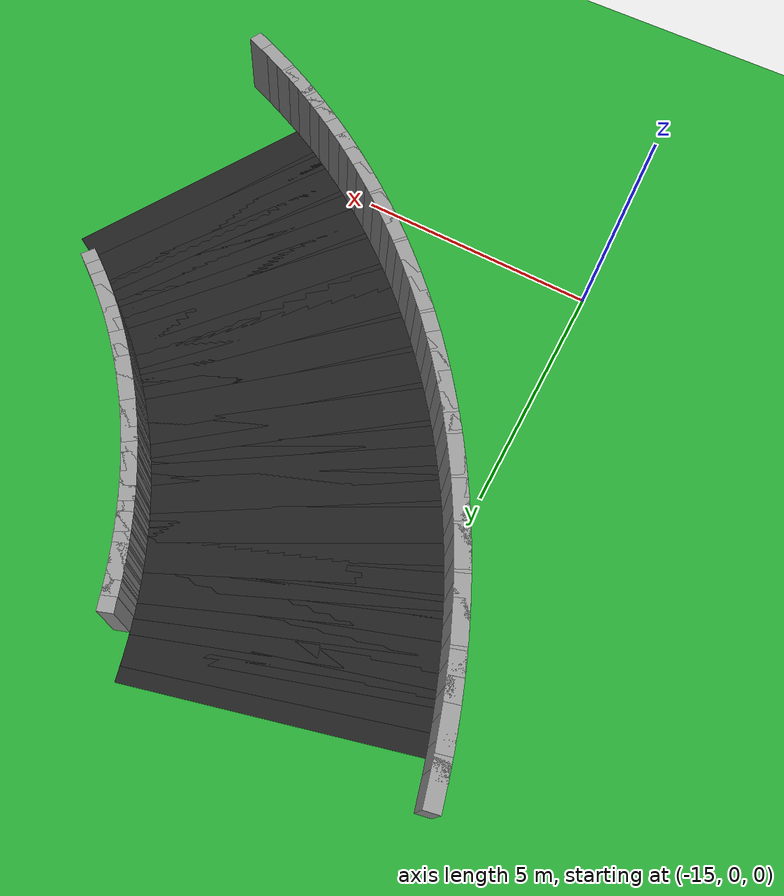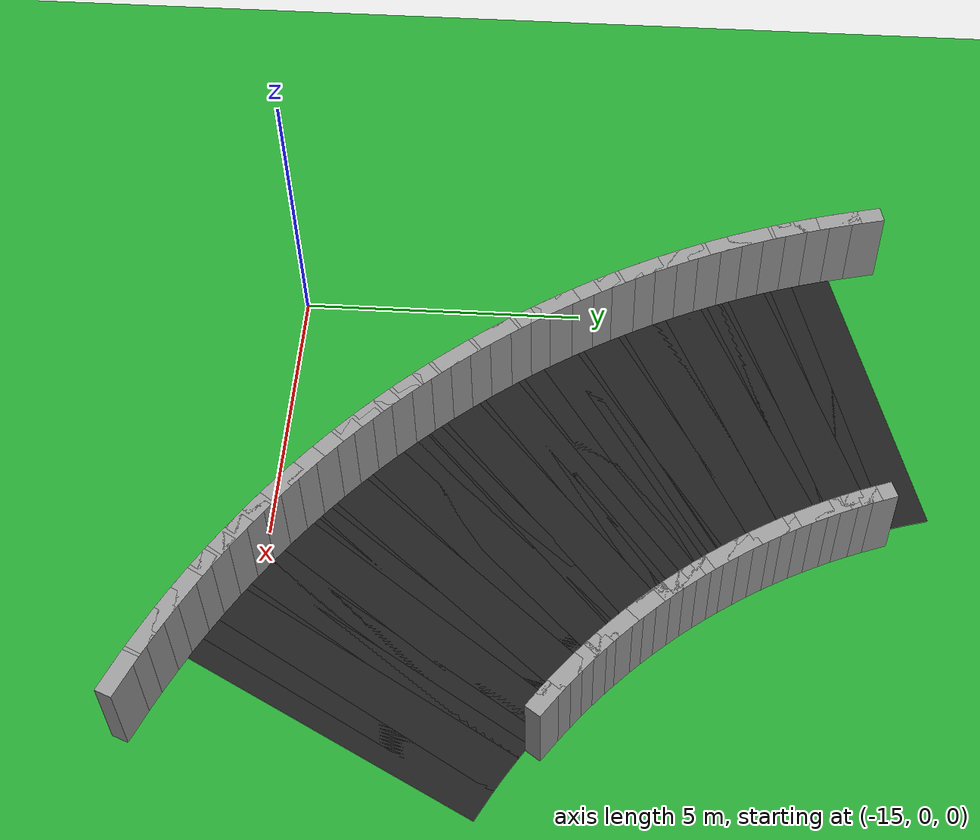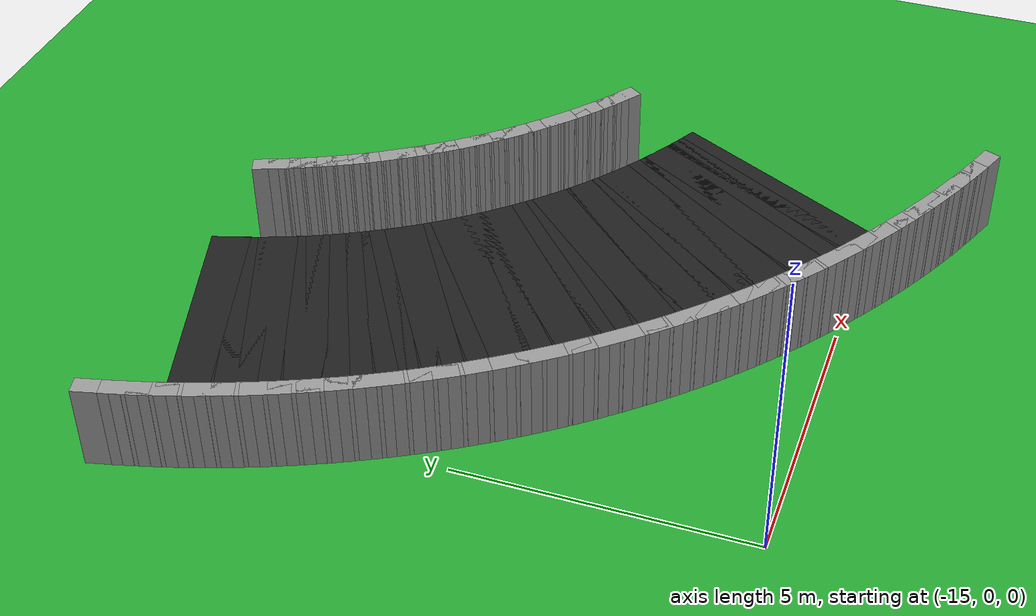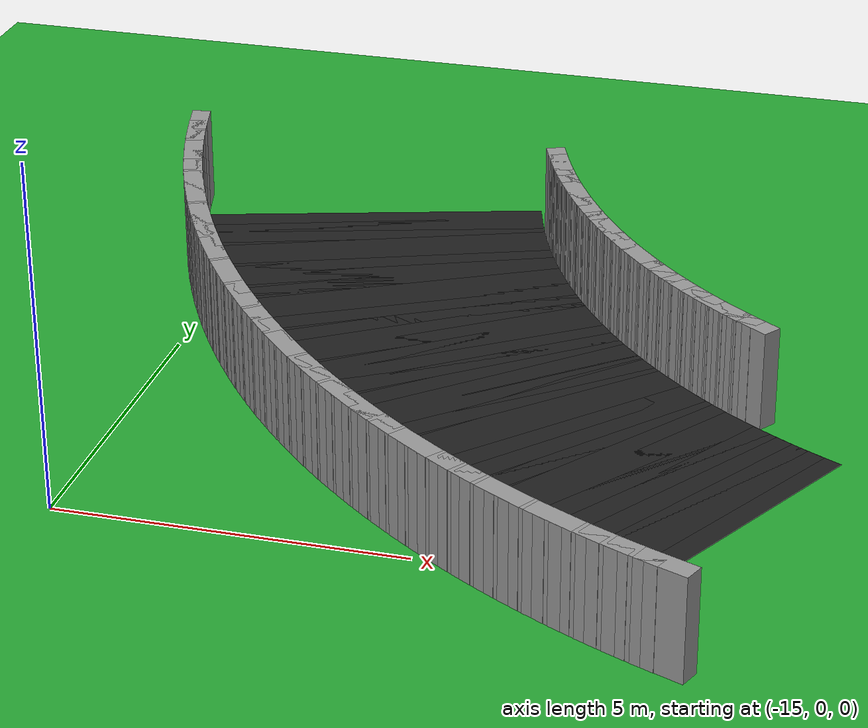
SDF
<sdf version="1.6">
 <world name="loop_speedloop">
  <include><uri>model://sun</uri></include>
  <model name="ground_plane">
   <static>true</static>
   <link name="link">
    <collision name="collision">
     <surface><friction><ode><mu>100</mu><mu2>50</mu2></ode></friction></surface>
     <geometry><plane><normal>0 0 1</normal><size>120 120</size></plane></geometry>
    </collision>
    <visual name="visual">
     <geometry><plane><normal>0 0 1</normal><size>120 120</size></plane></geometry>
     <material>
      <script><uri>file://media/materials/scripts/gazebo.material</uri><name>Gazebo/Green</name></script>
     </material>
    </visual>
   </link>
  </model>
  <model name="curbR_466">
   <static>true</static>
   <pose>-16.427 10.035 0.750 0 0 -1.33393</pose>
   <link name="link">
    <collision name="collision"><geometry><box><size>0.781 0.300 1.500</size></box></geometry></collision>
    <visual name="visual">
     <geometry><box><size>0.781 0.300 1.500</size></box></geometry>
     <material>
      <script><uri>file://media/materials/scripts/gazebo.material</uri><name>Gazebo/Grey</name></script>
     </material>
    </visual>
   </link>
  </model>
  <model name="curbR_467">
   <static>true</static>
   <pose>-16.323 9.627 0.750 0 0 -1.30900</pose>
   <link name="link">
    <collision name="collision"><geometry><box><size>0.781 0.300 1.500</size></box></geometry></collision>
    <visual name="visual">
     <geometry><box><size>0.781 0.300 1.500</size></box></geometry>
     <material>
      <script><uri>file://media/materials/scripts/gazebo.material</uri><name>Gazebo/Grey</name></script>
     </material>
    </visual>
   </link>
  </model>
  <model name="asphalt_468">
   <static>true</static>
   <pose>-13.428 10.041 0.005 0 0 -1.28406</pose>
   <link name="link">
    <visual name="visual">
     <geometry><box><size>0.709 5.500 0.010</size></box></geometry>
     <material>
      <script><uri>file://media/materials/scripts/gazebo.material</uri><name>Gazebo/Black</name></script>
     </material>
    </visual>
   </link>
  </model>
  <model name="curbR_468">
   <static>true</static>
   <pose>-16.209 9.221 0.750 0 0 -1.28406</pose>
   <link name="link">
    <collision name="collision"><geometry><box><size>0.781 0.300 1.500</size></box></geometry></collision>
    <visual name="visual">
     <geometry><box><size>0.781 0.300 1.500</size></box></geometry>
     <material>
      <script><uri>file://media/materials/scripts/gazebo.material</uri><name>Gazebo/Grey</name></script>
     </material>
    </visual>
   </link>
  </model>
  <model name="asphalt_469">
   <static>true</static>
   <pose>-13.325 9.708 0.005 0 0 -1.25913</pose>
   <link name="link">
    <visual name="visual">
     <geometry><box><size>0.709 5.500 0.010</size></box></geometry>
     <material>
      <script><uri>file://media/materials/scripts/gazebo.material</uri><name>Gazebo/Black</name></script>
     </material>
    </visual>
   </link>
  </model>
  <model name="curbR_469">
   <static>true</static>
   <pose>-16.085 8.818 0.750 0 0 -1.25913</pose>
   <link name="link">
    <collision name="collision"><geometry><box><size>0.781 0.300 1.500</size></box></geometry></collision>
    <visual name="visual">
     <geometry><box><size>0.781 0.300 1.500</size></box></geometry>
     <material>
      <script><uri>file://media/materials/scripts/gazebo.material</uri><name>Gazebo/Grey</name></script>
     </material>
    </visual>
   </link>
  </model>
  <model name="asphalt_470">
   <static>true</static>
   <pose>-13.214 9.377 0.005 0 0 -1.23420</pose>
   <link name="link">
    <visual name="visual">
     <geometry><box><size>0.709 5.500 0.010</size></box></geometry>
     <material>
      <script><uri>file://media/materials/scripts/gazebo.material</uri><name>Gazebo/Black</name></script>
     </material>
    </visual>
   </link>
  </model>
  <model name="curbR_470">
   <static>true</static>
   <pose>-15.951 8.419 0.750 0 0 -1.23420</pose>
   <link name="link">
    <collision name="collision"><geometry><box><size>0.781 0.300 1.500</size></box></geometry></collision>
    <visual name="visual">
     <geometry><box><size>0.781 0.300 1.500</size></box></geometry>
     <material>
      <script><uri>file://media/materials/scripts/gazebo.material</uri><name>Gazebo/Grey</name></script>
     </material>
    </visual>
   </link>
  </model>
  <model name="asphalt_471">
   <static>true</static>
   <pose>-13.094 9.049 0.005 0 0 -1.20926</pose>
   <link name="link">
    <visual name="visual">
     <geometry><box><size>0.709 5.500 0.010</size></box></geometry>
     <material>
      <script><uri>file://media/materials/scripts/gazebo.material</uri><name>Gazebo/Black</name></script>
     </material>
    </visual>
   </link>
  </model>
  <model name="curbL_471">
   <static>true</static>
   <pose>-10.382 10.074 0.750 0 0 -1.20926</pose>
   <link name="link">
    <collision name="collision"><geometry><box><size>0.637 0.300 1.500</size></box></geometry></collision>
    <visual name="visual">
     <geometry><box><size>0.637 0.300 1.500</size></box></geometry>
     <material>
      <script><uri>file://media/materials/scripts/gazebo.material</uri><name>Gazebo/Grey</name></script>
     </material>
    </visual>
   </link>
  </model>
  <model name="curbR_471">
   <static>true</static>
   <pose>-15.807 8.023 0.750 0 0 -1.20926</pose>
   <link name="link">
    <collision name="collision"><geometry><box><size>0.781 0.300 1.500</size></box></geometry></collision>
    <visual name="visual">
     <geometry><box><size>0.781 0.300 1.500</size></box></geometry>
     <material>
      <script><uri>file://media/materials/scripts/gazebo.material</uri><name>Gazebo/Grey</name></script>
     </material>
    </visual>
   </link>
  </model>
  <model name="asphalt_472">
   <static>true</static>
   <pose>-12.967 8.724 0.005 0 0 -1.18433</pose>
   <link name="link">
    <visual name="visual">
     <geometry><box><size>0.709 5.500 0.010</size></box></geometry>
     <material>
      <script><uri>file://media/materials/scripts/gazebo.material</uri><name>Gazebo/Black</name></script>
     </material>
    </visual>
   </link>
  </model>
  <model name="curbL_472">
   <static>true</static>
   <pose>-10.281 9.817 0.750 0 0 -1.18433</pose>
   <link name="link">
    <collision name="collision"><geometry><box><size>0.637 0.300 1.500</size></box></geometry></collision>
    <visual name="visual">
     <geometry><box><size>0.637 0.300 1.500</size></box></geometry>
     <material>
      <script><uri>file://media/materials/scripts/gazebo.material</uri><name>Gazebo/Grey</name></script>
     </material>
    </visual>
   </link>
  </model>
  <model name="curbR_472">
   <static>true</static>
   <pose>-15.653 7.631 0.750 0 0 -1.18433</pose>
   <link name="link">
    <collision name="collision"><geometry><box><size>0.781 0.300 1.500</size></box></geometry></collision>
    <visual name="visual">
     <geometry><box><size>0.781 0.300 1.500</size></box></geometry>
     <material>
      <script><uri>file://media/materials/scripts/gazebo.material</uri><name>Gazebo/Grey</name></script>
     </material>
    </visual>
   </link>
  </model>
  <model name="asphalt_473">
   <static>true</static>
   <pose>-12.831 8.402 0.005 0 0 -1.15940</pose>
   <link name="link">
    <visual name="visual">
     <geometry><box><size>0.709 5.500 0.010</size></box></geometry>
     <material>
      <script><uri>file://media/materials/scripts/gazebo.material</uri><name>Gazebo/Black</name></script>
     </material>
    </visual>
   </link>
  </model>
  <model name="curbL_473">
   <static>true</static>
   <pose>-10.173 9.562 0.750 0 0 -1.15940</pose>
   <link name="link">
    <collision name="collision"><geometry><box><size>0.637 0.300 1.500</size></box></geometry></collision>
    <visual name="visual">
     <geometry><box><size>0.637 0.300 1.500</size></box></geometry>
     <material>
      <script><uri>file://media/materials/scripts/gazebo.material</uri><name>Gazebo/Grey</name></script>
     </material>
    </visual>
   </link>
  </model>
  <model name="curbR_473">
   <static>true</static>
   <pose>-15.489 7.243 0.750 0 0 -1.15940</pose>
   <link name="link">
    <collision name="collision"><geometry><box><size>0.781 0.300 1.500</size></box></geometry></collision>
    <visual name="visual">
     <geometry><box><size>0.781 0.300 1.500</size></box></geometry>
     <material>
      <script><uri>file://media/materials/scripts/gazebo.material</uri><name>Gazebo/Grey</name></script>
     </material>
    </visual>
   </link>
  </model>
  <model name="asphalt_474">
   <static>true</static>
   <pose>-12.688 8.084 0.005 0 0 -1.13446</pose>
   <link name="link">
    <visual name="visual">
     <geometry><box><size>0.709 5.500 0.010</size></box></geometry>
     <material>
      <script><uri>file://media/materials/scripts/gazebo.material</uri><name>Gazebo/Black</name></script>
     </material>
    </visual>
   </link>
  </model>
  <model name="curbL_474">
   <static>true</static>
   <pose>-10.060 9.310 0.750 0 0 -1.13446</pose>
   <link name="link">
    <collision name="collision"><geometry><box><size>0.637 0.300 1.500</size></box></geometry></collision>
    <visual name="visual">
     <geometry><box><size>0.637 0.300 1.500</size></box></geometry>
     <material>
      <script><uri>file://media/materials/scripts/gazebo.material</uri><name>Gazebo/Grey</name></script>
     </material>
    </visual>
   </link>
  </model>
  <model name="curbR_474">
   <static>true</static>
   <pose>-15.316 6.859 0.750 0 0 -1.13446</pose>
   <link name="link">
    <collision name="collision"><geometry><box><size>0.781 0.300 1.500</size></box></geometry></collision>
    <visual name="visual">
     <geometry><box><size>0.781 0.300 1.500</size></box></geometry>
     <material>
      <script><uri>file://media/materials/scripts/gazebo.material</uri><name>Gazebo/Grey</name></script>
     </material>
    </visual>
   </link>
  </model>
  <model name="asphalt_475">
   <static>true</static>
   <pose>-12.536 7.770 0.005 0 0 -1.10953</pose>
   <link name="link">
    <visual name="visual">
     <geometry><box><size>0.709 5.500 0.010</size></box></geometry>
     <material>
      <script><uri>file://media/materials/scripts/gazebo.material</uri><name>Gazebo/Black</name></script>
     </material>
    </visual>
   </link>
  </model>
  <model name="curbL_475">
   <static>true</static>
   <pose>-9.939 9.060 0.750 0 0 -1.10953</pose>
   <link name="link">
    <collision name="collision"><geometry><box><size>0.637 0.300 1.500</size></box></geometry></collision>
    <visual name="visual">
     <geometry><box><size>0.637 0.300 1.500</size></box></geometry>
     <material>
      <script><uri>file://media/materials/scripts/gazebo.material</uri><name>Gazebo/Grey</name></script>
     </material>
    </visual>
   </link>
  </model>
  <model name="curbR_475">
   <static>true</static>
   <pose>-15.133 6.479 0.750 0 0 -1.10953</pose>
   <link name="link">
    <collision name="collision"><geometry><box><size>0.781 0.300 1.500</size></box></geometry></collision>
    <visual name="visual">
     <geometry><box><size>0.781 0.300 1.500</size></box></geometry>
     <material>
      <script><uri>file://media/materials/scripts/gazebo.material</uri><name>Gazebo/Grey</name></script>
     </material>
    </visual>
   </link>
  </model>
  <model name="asphalt_476">
   <static>true</static>
   <pose>-12.377 7.459 0.005 0 0 -1.08460</pose>
   <link name="link">
    <visual name="visual">
     <geometry><box><size>0.709 5.500 0.010</size></box></geometry>
     <material>
      <script><uri>file://media/materials/scripts/gazebo.material</uri><name>Gazebo/Black</name></script>
     </material>
    </visual>
   </link>
  </model>
  <model name="curbL_476">
   <static>true</static>
   <pose>-9.813 8.814 0.750 0 0 -1.08460</pose>
   <link name="link">
    <collision name="collision"><geometry><box><size>0.637 0.300 1.500</size></box></geometry></collision>
    <visual name="visual">
     <geometry><box><size>0.637 0.300 1.500</size></box></geometry>
     <material>
      <script><uri>file://media/materials/scripts/gazebo.material</uri><name>Gazebo/Grey</name></script>
     </material>
    </visual>
   </link>
  </model>
  <model name="curbR_476">
   <static>true</static>
   <pose>-14.941 6.104 0.750 0 0 -1.08460</pose>
   <link name="link">
    <collision name="collision"><geometry><box><size>0.781 0.300 1.500</size></box></geometry></collision>
    <visual name="visual">
     <geometry><box><size>0.781 0.300 1.500</size></box></geometry>
     <material>
      <script><uri>file://media/materials/scripts/gazebo.material</uri><name>Gazebo/Grey</name></script>
     </material>
    </visual>
   </link>
  </model>
  <model name="asphalt_477">
   <static>true</static>
   <pose>-12.210 7.152 0.005 0 0 -1.05966</pose>
   <link name="link">
    <visual name="visual">
     <geometry><box><size>0.709 5.500 0.010</size></box></geometry>
     <material>
      <script><uri>file://media/materials/scripts/gazebo.material</uri><name>Gazebo/Black</name></script>
     </material>
    </visual>
   </link>
  </model>
  <model name="curbL_477">
   <static>true</static>
   <pose>-9.681 8.571 0.750 0 0 -1.05966</pose>
   <link name="link">
    <collision name="collision"><geometry><box><size>0.637 0.300 1.500</size></box></geometry></collision>
    <visual name="visual">
     <geometry><box><size>0.637 0.300 1.500</size></box></geometry>
     <material>
      <script><uri>file://media/materials/scripts/gazebo.material</uri><name>Gazebo/Grey</name></script>
     </material>
    </visual>
   </link>
  </model>
  <model name="curbR_477">
   <static>true</static>
   <pose>-14.739 5.734 0.750 0 0 -1.05966</pose>
   <link name="link">
    <collision name="collision"><geometry><box><size>0.781 0.300 1.500</size></box></geometry></collision>
    <visual name="visual">
     <geometry><box><size>0.781 0.300 1.500</size></box></geometry>
     <material>
      <script><uri>file://media/materials/scripts/gazebo.material</uri><name>Gazebo/Grey</name></script>
     </material>
    </visual>
   </link>
  </model>
  <model name="asphalt_478">
   <static>true</static>
   <pose>-12.036 6.850 0.005 0 0 -1.03473</pose>
   <link name="link">
    <visual name="visual">
     <geometry><box><size>0.709 5.500 0.010</size></box></geometry>
     <material>
      <script><uri>file://media/materials/scripts/gazebo.material</uri><name>Gazebo/Black</name></script>
     </material>
    </visual>
   </link>
  </model>
  <model name="curbL_478">
   <static>true</static>
   <pose>-9.543 8.331 0.750 0 0 -1.03473</pose>
   <link name="link">
    <collision name="collision"><geometry><box><size>0.637 0.300 1.500</size></box></geometry></collision>
    <visual name="visual">
     <geometry><box><size>0.637 0.300 1.500</size></box></geometry>
     <material>
      <script><uri>file://media/materials/scripts/gazebo.material</uri><name>Gazebo/Grey</name></script>
     </material>
    </visual>
   </link>
  </model>
  <model name="curbR_478">
   <static>true</static>
   <pose>-14.529 5.369 0.750 0 0 -1.03473</pose>
   <link name="link">
    <collision name="collision"><geometry><box><size>0.781 0.300 1.500</size></box></geometry></collision>
    <visual name="visual">
     <geometry><box><size>0.781 0.300 1.500</size></box></geometry>
     <material>
      <script><uri>file://media/materials/scripts/gazebo.material</uri><name>Gazebo/Grey</name></script>
     </material>
    </visual>
   </link>
  </model>
  <model name="asphalt_479">
   <static>true</static>
   <pose>-11.854 6.552 0.005 0 0 -1.00980</pose>
   <link name="link">
    <visual name="visual">
     <geometry><box><size>0.709 5.500 0.010</size></box></geometry>
     <material>
      <script><uri>file://media/materials/scripts/gazebo.material</uri><name>Gazebo/Black</name></script>
     </material>
    </visual>
   </link>
  </model>
  <model name="curbL_479">
   <static>true</static>
   <pose>-9.398 8.095 0.750 0 0 -1.00980</pose>
   <link name="link">
    <collision name="collision"><geometry><box><size>0.637 0.300 1.500</size></box></geometry></collision>
    <visual name="visual">
     <geometry><box><size>0.637 0.300 1.500</size></box></geometry>
     <material>
      <script><uri>file://media/materials/scripts/gazebo.material</uri><name>Gazebo/Grey</name></script>
     </material>
    </visual>
   </link>
  </model>
  <model name="curbR_479">
   <static>true</static>
   <pose>-14.309 5.010 0.750 0 0 -1.00980</pose>
   <link name="link">
    <collision name="collision"><geometry><box><size>0.781 0.300 1.500</size></box></geometry></collision>
    <visual name="visual">
     <geometry><box><size>0.781 0.300 1.500</size></box></geometry>
     <material>
      <script><uri>file://media/materials/scripts/gazebo.material</uri><name>Gazebo/Grey</name></script>
     </material>
    </visual>
   </link>
  </model>
  <model name="asphalt_480">
   <static>true</static>
   <pose>-11.664 6.259 0.005 0 0 -0.98486</pose>
   <link name="link">
    <visual name="visual">
     <geometry><box><size>0.709 5.500 0.010</size></box></geometry>
     <material>
      <script><uri>file://media/materials/scripts/gazebo.material</uri><name>Gazebo/Black</name></script>
     </material>
    </visual>
   </link>
  </model>
  <model name="curbL_480">
   <static>true</static>
   <pose>-9.248 7.863 0.750 0 0 -0.98486</pose>
   <link name="link">
    <collision name="collision"><geometry><box><size>0.637 0.300 1.500</size></box></geometry></collision>
    <visual name="visual">
     <geometry><box><size>0.637 0.300 1.500</size></box></geometry>
     <material>
      <script><uri>file://media/materials/scripts/gazebo.material</uri><name>Gazebo/Grey</name></script>
     </material>
    </visual>
   </link>
  </model>
  <model name="curbR_480">
   <static>true</static>
   <pose>-14.080 4.656 0.750 0 0 -0.98486</pose>
   <link name="link">
    <collision name="collision"><geometry><box><size>0.781 0.300 1.500</size></box></geometry></collision>
    <visual name="visual">
     <geometry><box><size>0.781 0.300 1.500</size></box></geometry>
     <material>
      <script><uri>file://media/materials/scripts/gazebo.material</uri><name>Gazebo/Grey</name></script>
     </material>
    </visual>
   </link>
  </model>
  <model name="asphalt_481">
   <static>true</static>
   <pose>-11.468 5.971 0.005 0 0 -0.95993</pose>
   <link name="link">
    <visual name="visual">
     <geometry><box><size>0.709 5.500 0.010</size></box></geometry>
     <material>
      <script><uri>file://media/materials/scripts/gazebo.material</uri><name>Gazebo/Black</name></script>
     </material>
    </visual>
   </link>
  </model>
  <model name="curbL_481">
   <static>true</static>
   <pose>-9.092 7.634 0.750 0 0 -0.95993</pose>
   <link name="link">
    <collision name="collision"><geometry><box><size>0.637 0.300 1.500</size></box></geometry></collision>
    <visual name="visual">
     <geometry><box><size>0.637 0.300 1.500</size></box></geometry>
     <material>
      <script><uri>file://media/materials/scripts/gazebo.material</uri><name>Gazebo/Grey</name></script>
     </material>
    </visual>
   </link>
  </model>
  <model name="curbR_481">
   <static>true</static>
   <pose>-13.843 4.307 0.750 0 0 -0.95993</pose>
   <link name="link">
    <collision name="collision"><geometry><box><size>0.781 0.300 1.500</size></box></geometry></collision>
    <visual name="visual">
     <geometry><box><size>0.781 0.300 1.500</size></box></geometry>
     <material>
      <script><uri>file://media/materials/scripts/gazebo.material</uri><name>Gazebo/Grey</name></script>
     </material>
    </visual>
   </link>
  </model>
  <model name="asphalt_482">
   <static>true</static>
   <pose>-11.264 5.687 0.005 0 0 -0.93500</pose>
   <link name="link">
    <visual name="visual">
     <geometry><box><size>0.709 5.500 0.010</size></box></geometry>
     <material>
      <script><uri>file://media/materials/scripts/gazebo.material</uri><name>Gazebo/Black</name></script>
     </material>
    </visual>
   </link>
  </model>
  <model name="curbL_482">
   <static>true</static>
   <pose>-8.931 7.409 0.750 0 0 -0.93500</pose>
   <link name="link">
    <collision name="collision"><geometry><box><size>0.637 0.300 1.500</size></box></geometry></collision>
    <visual name="visual">
     <geometry><box><size>0.637 0.300 1.500</size></box></geometry>
     <material>
      <script><uri>file://media/materials/scripts/gazebo.material</uri><name>Gazebo/Grey</name></script>
     </material>
    </visual>
   </link>
  </model>
  <model name="curbR_482">
   <static>true</static>
   <pose>-13.597 3.965 0.750 0 0 -0.93500</pose>
   <link name="link">
    <collision name="collision"><geometry><box><size>0.781 0.300 1.500</size></box></geometry></collision>
    <visual name="visual">
     <geometry><box><size>0.781 0.300 1.500</size></box></geometry>
     <material>
      <script><uri>file://media/materials/scripts/gazebo.material</uri><name>Gazebo/Grey</name></script>
     </material>
    </visual>
   </link>
  </model>
  <model name="asphalt_483">
   <static>true</static>
   <pose>-11.053 5.409 0.005 0 0 -0.91006</pose>
   <link name="link">
    <visual name="visual">
     <geometry><box><size>0.709 5.500 0.010</size></box></geometry>
     <material>
      <script><uri>file://media/materials/scripts/gazebo.material</uri><name>Gazebo/Black</name></script>
     </material>
    </visual>
   </link>
  </model>
  <model name="curbL_483">
   <static>true</static>
   <pose>-8.764 7.189 0.750 0 0 -0.91006</pose>
   <link name="link">
    <collision name="collision"><geometry><box><size>0.637 0.300 1.500</size></box></geometry></collision>
    <visual name="visual">
     <geometry><box><size>0.637 0.300 1.500</size></box></geometry>
     <material>
      <script><uri>file://media/materials/scripts/gazebo.material</uri><name>Gazebo/Grey</name></script>
     </material>
    </visual>
   </link>
  </model>
  <model name="curbR_483">
   <static>true</static>
   <pose>-13.343 3.630 0.750 0 0 -0.91006</pose>
   <link name="link">
    <collision name="collision"><geometry><box><size>0.781 0.300 1.500</size></box></geometry></collision>
    <visual name="visual">
     <geometry><box><size>0.781 0.300 1.500</size></box></geometry>
     <material>
      <script><uri>file://media/materials/scripts/gazebo.material</uri><name>Gazebo/Grey</name></script>
     </material>
    </visual>
   </link>
  </model>
  <model name="asphalt_484">
   <static>true</static>
   <pose>-10.835 5.136 0.005 0 0 -0.88513</pose>
   <link name="link">
    <visual name="visual">
     <geometry><box><size>0.709 5.500 0.010</size></box></geometry>
     <material>
      <script><uri>file://media/materials/scripts/gazebo.material</uri><name>Gazebo/Black</name></script>
     </material>
    </visual>
   </link>
  </model>
  <model name="curbL_484">
   <static>true</static>
   <pose>-8.591 6.972 0.750 0 0 -0.88513</pose>
   <link name="link">
    <collision name="collision"><geometry><box><size>0.637 0.300 1.500</size></box></geometry></collision>
    <visual name="visual">
     <geometry><box><size>0.637 0.300 1.500</size></box></geometry>
     <material>
      <script><uri>file://media/materials/scripts/gazebo.material</uri><name>Gazebo/Grey</name></script>
     </material>
    </visual>
   </link>
  </model>
  <model name="curbR_484">
   <static>true</static>
   <pose>-13.080 3.300 0.750 0 0 -0.88513</pose>
   <link name="link">
    <collision name="collision"><geometry><box><size>0.781 0.300 1.500</size></box></geometry></collision>
    <visual name="visual">
     <geometry><box><size>0.781 0.300 1.500</size></box></geometry>
     <material>
      <script><uri>file://media/materials/scripts/gazebo.material</uri><name>Gazebo/Grey</name></script>
     </material>
    </visual>
   </link>
  </model>
  <model name="asphalt_485">
   <static>true</static>
   <pose>-10.611 4.869 0.005 0 0 -0.86020</pose>
   <link name="link">
    <visual name="visual">
     <geometry><box><size>0.709 5.500 0.010</size></box></geometry>
     <material>
      <script><uri>file://media/materials/scripts/gazebo.material</uri><name>Gazebo/Black</name></script>
     </material>
    </visual>
   </link>
  </model>
  <model name="curbL_485">
   <static>true</static>
   <pose>-8.413 6.760 0.750 0 0 -0.86020</pose>
   <link name="link">
    <collision name="collision"><geometry><box><size>0.637 0.300 1.500</size></box></geometry></collision>
    <visual name="visual">
     <geometry><box><size>0.637 0.300 1.500</size></box></geometry>
     <material>
      <script><uri>file://media/materials/scripts/gazebo.material</uri><name>Gazebo/Grey</name></script>
     </material>
    </visual>
   </link>
  </model>
  <model name="curbR_485">
   <static>true</static>
   <pose>-12.809 2.977 0.750 0 0 -0.86020</pose>
   <link name="link">
    <collision name="collision"><geometry><box><size>0.781 0.300 1.500</size></box></geometry></collision>
    <visual name="visual">
     <geometry><box><size>0.781 0.300 1.500</size></box></geometry>
     <material>
      <script><uri>file://media/materials/scripts/gazebo.material</uri><name>Gazebo/Grey</name></script>
     </material>
    </visual>
   </link>
  </model>
  <model name="asphalt_486">
   <static>true</static>
   <pose>-10.380 4.607 0.005 0 0 -0.83526</pose>
   <link name="link">
    <visual name="visual">
     <geometry><box><size>0.709 5.500 0.010</size></box></geometry>
     <material>
      <script><uri>file://media/materials/scripts/gazebo.material</uri><name>Gazebo/Black</name></script>
     </material>
    </visual>
   </link>
  </model>
  <model name="curbL_486">
   <static>true</static>
   <pose>-8.230 6.553 0.750 0 0 -0.83526</pose>
   <link name="link">
    <collision name="collision"><geometry><box><size>0.637 0.300 1.500</size></box></geometry></collision>
    <visual name="visual">
     <geometry><box><size>0.637 0.300 1.500</size></box></geometry>
     <material>
      <script><uri>file://media/materials/scripts/gazebo.material</uri><name>Gazebo/Grey</name></script>
     </material>
    </visual>
   </link>
  </model>
  <model name="curbR_486">
   <static>true</static>
   <pose>-12.530 2.661 0.750 0 0 -0.83526</pose>
   <link name="link">
    <collision name="collision"><geometry><box><size>0.781 0.300 1.500</size></box></geometry></collision>
    <visual name="visual">
     <geometry><box><size>0.781 0.300 1.500</size></box></geometry>
     <material>
      <script><uri>file://media/materials/scripts/gazebo.material</uri><name>Gazebo/Grey</name></script>
     </material>
    </visual>
   </link>
  </model>
  <model name="asphalt_487">
   <static>true</static>
   <pose>-10.143 4.351 0.005 0 0 -0.81033</pose>
   <link name="link">
    <visual name="visual">
     <geometry><box><size>0.709 5.500 0.010</size></box></geometry>
     <material>
      <script><uri>file://media/materials/scripts/gazebo.material</uri><name>Gazebo/Black</name></script>
     </material>
    </visual>
   </link>
  </model>
  <model name="curbL_487">
   <static>true</static>
   <pose>-8.042 6.350 0.750 0 0 -0.81033</pose>
   <link name="link">
    <collision name="collision"><geometry><box><size>0.637 0.300 1.500</size></box></geometry></collision>
    <visual name="visual">
     <geometry><box><size>0.637 0.300 1.500</size></box></geometry>
     <material>
      <script><uri>file://media/materials/scripts/gazebo.material</uri><name>Gazebo/Grey</name></script>
     </material>
    </visual>
   </link>
  </model>
  <model name="curbR_487">
   <static>true</static>
   <pose>-12.244 2.353 0.750 0 0 -0.81033</pose>
   <link name="link">
    <collision name="collision"><geometry><box><size>0.781 0.300 1.500</size></box></geometry></collision>
    <visual name="visual">
     <geometry><box><size>0.781 0.300 1.500</size></box></geometry>
     <material>
      <script><uri>file://media/materials/scripts/gazebo.material</uri><name>Gazebo/Grey</name></script>
     </material>
    </visual>
   </link>
  </model>
  <model name="asphalt_488">
   <static>true</static>
   <pose>-9.899 4.101 0.005 0 0 -0.78540</pose>
   <link name="link">
    <visual name="visual">
     <geometry><box><size>0.709 5.500 0.010</size></box></geometry>
     <material>
      <script><uri>file://media/materials/scripts/gazebo.material</uri><name>Gazebo/Black</name></script>
     </material>
    </visual>
   </link>
  </model>
  <model name="curbL_488">
   <static>true</static>
   <pose>-7.849 6.152 0.750 0 0 -0.78540</pose>
   <link name="link">
    <collision name="collision"><geometry><box><size>0.637 0.300 1.500</size></box></geometry></collision>
    <visual name="visual">
     <geometry><box><size>0.637 0.300 1.500</size></box></geometry>
     <material>
      <script><uri>file://media/materials/scripts/gazebo.material</uri><name>Gazebo/Grey</name></script>
     </material>
    </visual>
   </link>
  </model>
  <model name="curbR_488">
   <static>true</static>
   <pose>-11.949 2.051 0.750 0 0 -0.78540</pose>
   <link name="link">
    <collision name="collision"><geometry><box><size>0.781 0.300 1.500</size></box></geometry></collision>
    <visual name="visual">
     <geometry><box><size>0.781 0.300 1.500</size></box></geometry>
     <material>
      <script><uri>file://media/materials/scripts/gazebo.material</uri><name>Gazebo/Grey</name></script>
     </material>
    </visual>
   </link>
  </model>
  <model name="asphalt_489">
   <static>true</static>
   <pose>-9.649 3.858 0.005 0 0 -0.76046</pose>
   <link name="link">
    <visual name="visual">
     <geometry><box><size>0.709 5.500 0.010</size></box></geometry>
     <material>
      <script><uri>file://media/materials/scripts/gazebo.material</uri><name>Gazebo/Black</name></script>
     </material>
    </visual>
   </link>
  </model>
  <model name="curbL_489">
   <static>true</static>
   <pose>-7.650 5.959 0.750 0 0 -0.76046</pose>
   <link name="link">
    <collision name="collision"><geometry><box><size>0.637 0.300 1.500</size></box></geometry></collision>
    <visual name="visual">
     <geometry><box><size>0.637 0.300 1.500</size></box></geometry>
     <material>
      <script><uri>file://media/materials/scripts/gazebo.material</uri><name>Gazebo/Grey</name></script>
     </material>
    </visual>
   </link>
  </model>
  <model name="curbR_489">
   <static>true</static>
   <pose>-11.648 1.757 0.750 0 0 -0.76046</pose>
   <link name="link">
    <collision name="collision"><geometry><box><size>0.781 0.300 1.500</size></box></geometry></collision>
    <visual name="visual">
     <geometry><box><size>0.781 0.300 1.500</size></box></geometry>
     <material>
      <script><uri>file://media/materials/scripts/gazebo.material</uri><name>Gazebo/Grey</name></script>
     </material>
    </visual>
   </link>
  </model>
  <model name="asphalt_490">
   <static>true</static>
   <pose>-9.393 3.620 0.005 0 0 -0.73553</pose>
   <link name="link">
    <visual name="visual">
     <geometry><box><size>0.709 5.500 0.010</size></box></geometry>
     <material>
      <script><uri>file://media/materials/scripts/gazebo.material</uri><name>Gazebo/Black</name></script>
     </material>
    </visual>
   </link>
  </model>
  <model name="curbL_490">
   <static>true</static>
   <pose>-7.448 5.770 0.750 0 0 -0.73553</pose>
   <link name="link">
    <collision name="collision"><geometry><box><size>0.637 0.300 1.500</size></box></geometry></collision>
    <visual name="visual">
     <geometry><box><size>0.637 0.300 1.500</size></box></geometry>
     <material>
      <script><uri>file://media/materials/scripts/gazebo.material</uri><name>Gazebo/Grey</name></script>
     </material>
    </visual>
   </link>
  </model>
  <model name="curbR_490">
   <static>true</static>
   <pose>-11.339 1.470 0.750 0 0 -0.73553</pose>
   <link name="link">
    <collision name="collision"><geometry><box><size>0.781 0.300 1.500</size></box></geometry></collision>
    <visual name="visual">
     <geometry><box><size>0.781 0.300 1.500</size></box></geometry>
     <material>
      <script><uri>file://media/materials/scripts/gazebo.material</uri><name>Gazebo/Grey</name></script>
     </material>
    </visual>
   </link>
  </model>
  <model name="asphalt_491">
   <static>true</static>
   <pose>-9.132 3.389 0.005 0 0 -0.71060</pose>
   <link name="link">
    <visual name="visual">
     <geometry><box><size>0.709 5.500 0.010</size></box></geometry>
     <material>
      <script><uri>file://media/materials/scripts/gazebo.material</uri><name>Gazebo/Black</name></script>
     </material>
    </visual>
   </link>
  </model>
  <model name="curbL_491">
   <static>true</static>
   <pose>-7.240 5.587 0.750 0 0 -0.71060</pose>
   <link name="link">
    <collision name="collision"><geometry><box><size>0.637 0.300 1.500</size></box></geometry></collision>
    <visual name="visual">
     <geometry><box><size>0.637 0.300 1.500</size></box></geometry>
     <material>
      <script><uri>file://media/materials/scripts/gazebo.material</uri><name>Gazebo/Grey</name></script>
     </material>
    </visual>
   </link>
  </model>
  <model name="curbR_491">
   <static>true</static>
   <pose>-11.023 1.191 0.750 0 0 -0.71060</pose>
   <link name="link">
    <collision name="collision"><geometry><box><size>0.781 0.300 1.500</size></box></geometry></collision>
    <visual name="visual">
     <geometry><box><size>0.781 0.300 1.500</size></box></geometry>
     <material>
      <script><uri>file://media/materials/scripts/gazebo.material</uri><name>Gazebo/Grey</name></script>
     </material>
    </visual>
   </link>
  </model>
  <model name="asphalt_492">
   <static>true</static>
   <pose>-8.864 3.165 0.005 0 0 -0.68567</pose>
   <link name="link">
    <visual name="visual">
     <geometry><box><size>0.709 5.500 0.010</size></box></geometry>
     <material>
      <script><uri>file://media/materials/scripts/gazebo.material</uri><name>Gazebo/Black</name></script>
     </material>
    </visual>
   </link>
  </model>
  <model name="curbL_492">
   <static>true</static>
   <pose>-7.028 5.409 0.750 0 0 -0.68567</pose>
   <link name="link">
    <collision name="collision"><geometry><box><size>0.637 0.300 1.500</size></box></geometry></collision>
    <visual name="visual">
     <geometry><box><size>0.637 0.300 1.500</size></box></geometry>
     <material>
      <script><uri>file://media/materials/scripts/gazebo.material</uri><name>Gazebo/Grey</name></script>
     </material>
    </visual>
   </link>
  </model>
  <model name="curbR_492">
   <static>true</static>
   <pose>-10.700 0.921 0.750 0 0 -0.68567</pose>
   <link name="link">
    <collision name="collision"><geometry><box><size>0.781 0.300 1.500</size></box></geometry></collision>
    <visual name="visual">
     <geometry><box><size>0.781 0.300 1.500</size></box></geometry>
     <material>
      <script><uri>file://media/materials/scripts/gazebo.material</uri><name>Gazebo/Grey</name></script>
     </material>
    </visual>
   </link>
  </model>
  <model name="asphalt_493">
   <static>true</static>
   <pose>-8.591 2.947 0.005 0 0 -0.66073</pose>
   <link name="link">
    <visual name="visual">
     <geometry><box><size>0.709 5.500 0.010</size></box></geometry>
     <material>
      <script><uri>file://media/materials/scripts/gazebo.material</uri><name>Gazebo/Black</name></script>
     </material>
    </visual>
   </link>
  </model>
  <model name="curbL_493">
   <static>true</static>
   <pose>-6.812 5.237 0.750 0 0 -0.66073</pose>
   <link name="link">
    <collision name="collision"><geometry><box><size>0.637 0.300 1.500</size></box></geometry></collision>
    <visual name="visual">
     <geometry><box><size>0.637 0.300 1.500</size></box></geometry>
     <material>
      <script><uri>file://media/materials/scripts/gazebo.material</uri><name>Gazebo/Grey</name></script>
     </material>
    </visual>
   </link>
  </model>
  <model name="curbR_493">
   <static>true</static>
   <pose>-10.371 0.658 0.750 0 0 -0.66073</pose>
   <link name="link">
    <collision name="collision"><geometry><box><size>0.781 0.300 1.500</size></box></geometry></collision>
    <visual name="visual">
     <geometry><box><size>0.781 0.300 1.500</size></box></geometry>
     <material>
      <script><uri>file://media/materials/scripts/gazebo.material</uri><name>Gazebo/Grey</name></script>
     </material>
    </visual>
   </link>
  </model>
  <model name="asphalt_494">
   <static>true</static>
   <pose>-8.313 2.737 0.005 0 0 -0.63580</pose>
   <link name="link">
    <visual name="visual">
     <geometry><box><size>0.709 5.500 0.010</size></box></geometry>
     <material>
      <script><uri>file://media/materials/scripts/gazebo.material</uri><name>Gazebo/Black</name></script>
     </material>
    </visual>
   </link>
  </model>
  <model name="curbL_494">
   <static>true</static>
   <pose>-6.591 5.070 0.750 0 0 -0.63580</pose>
   <link name="link">
    <collision name="collision"><geometry><box><size>0.637 0.300 1.500</size></box></geometry></collision>
    <visual name="visual">
     <geometry><box><size>0.637 0.300 1.500</size></box></geometry>
     <material>
      <script><uri>file://media/materials/scripts/gazebo.material</uri><name>Gazebo/Grey</name></script>
     </material>
    </visual>
   </link>
  </model>
  <model name="curbR_494">
   <static>true</static>
   <pose>-10.035 0.403 0.750 0 0 -0.63580</pose>
   <link name="link">
    <collision name="collision"><geometry><box><size>0.781 0.300 1.500</size></box></geometry></collision>
    <visual name="visual">
     <geometry><box><size>0.781 0.300 1.500</size></box></geometry>
     <material>
      <script><uri>file://media/materials/scripts/gazebo.material</uri><name>Gazebo/Grey</name></script>
     </material>
    </visual>
   </link>
  </model>
  <model name="asphalt_495">
   <static>true</static>
   <pose>-8.030 2.533 0.005 0 0 -0.61087</pose>
   <link name="link">
    <visual name="visual">
     <geometry><box><size>0.709 5.500 0.010</size></box></geometry>
     <material>
      <script><uri>file://media/materials/scripts/gazebo.material</uri><name>Gazebo/Black</name></script>
     </material>
    </visual>
   </link>
  </model>
  <model name="curbL_495">
   <static>true</static>
   <pose>-6.366 4.908 0.750 0 0 -0.61087</pose>
   <link name="link">
    <collision name="collision"><geometry><box><size>0.637 0.300 1.500</size></box></geometry></collision>
    <visual name="visual">
     <geometry><box><size>0.637 0.300 1.500</size></box></geometry>
     <material>
      <script><uri>file://media/materials/scripts/gazebo.material</uri><name>Gazebo/Grey</name></script>
     </material>
    </visual>
   </link>
  </model>
  <model name="curbR_495">
   <static>true</static>
   <pose>-9.693 0.157 0.750 0 0 -0.61087</pose>
   <link name="link">
    <collision name="collision"><geometry><box><size>0.781 0.300 1.500</size></box></geometry></collision>
    <visual name="visual">
     <geometry><box><size>0.781 0.300 1.500</size></box></geometry>
     <material>
      <script><uri>file://media/materials/scripts/gazebo.material</uri><name>Gazebo/Grey</name></script>
     </material>
    </visual>
   </link>
  </model>
  <model name="asphalt_496">
   <static>true</static>
   <pose>-7.741 2.336 0.005 0 0 -0.58593</pose>
   <link name="link">
    <visual name="visual">
     <geometry><box><size>0.709 5.500 0.010</size></box></geometry>
     <material>
      <script><uri>file://media/materials/scripts/gazebo.material</uri><name>Gazebo/Black</name></script>
     </material>
    </visual>
   </link>
  </model>
  <model name="curbR_496">
   <static>true</static>
   <pose>-9.345 -0.080 0.750 0 0 -0.58593</pose>
   <link name="link">
    <collision name="collision"><geometry><box><size>0.781 0.300 1.500</size></box></geometry></collision>
    <visual name="visual">
     <geometry><box><size>0.781 0.300 1.500</size></box></geometry>
     <material>
      <script><uri>file://media/materials/scripts/gazebo.material</uri><name>Gazebo/Grey</name></script>
     </material>
    </visual>
   </link>
  </model>
  <model name="asphalt_497">
   <static>true</static>
   <pose>-7.448 2.147 0.005 0 0 -0.56100</pose>
   <link name="link">
    <visual name="visual">
     <geometry><box><size>0.709 5.500 0.010</size></box></geometry>
     <material>
      <script><uri>file://media/materials/scripts/gazebo.material</uri><name>Gazebo/Black</name></script>
     </material>
    </visual>
   </link>
  </model>
  <model name="curbR_497">
   <static>true</static>
   <pose>-8.991 -0.308 0.750 0 0 -0.56100</pose>
   <link name="link">
    <collision name="collision"><geometry><box><size>0.781 0.300 1.500</size></box></geometry></collision>
    <visual name="visual">
     <geometry><box><size>0.781 0.300 1.500</size></box></geometry>
     <material>
      <script><uri>file://media/materials/scripts/gazebo.material</uri><name>Gazebo/Grey</name></script>
     </material>
    </visual>
   </link>
  </model>
  <model name="asphalt_498">
   <static>true</static>
   <pose>-7.150 1.965 0.005 0 0 -0.53607</pose>
   <link name="link">
    <visual name="visual">
     <geometry><box><size>0.709 5.500 0.010</size></box></geometry>
     <material>
      <script><uri>file://media/materials/scripts/gazebo.material</uri><name>Gazebo/Black</name></script>
     </material>
    </visual>
   </link>
  </model>
  <model name="curbR_498">
   <static>true</static>
   <pose>-8.631 -0.528 0.750 0 0 -0.53607</pose>
   <link name="link">
    <collision name="collision"><geometry><box><size>0.781 0.300 1.500</size></box></geometry></collision>
    <visual name="visual">
     <geometry><box><size>0.781 0.300 1.500</size></box></geometry>
     <material>
      <script><uri>file://media/materials/scripts/gazebo.material</uri><name>Gazebo/Grey</name></script>
     </material>
    </visual>
   </link>
  </model>
  <model name="asphalt_499">
   <static>true</static>
   <pose>-6.848 1.790 0.005 0 0 -0.51113</pose>
   <link name="link">
    <visual name="visual">
     <geometry><box><size>0.709 5.500 0.010</size></box></geometry>
     <material>
      <script><uri>file://media/materials/scripts/gazebo.material</uri><name>Gazebo/Black</name></script>
     </material>
    </visual>
   </link>
  </model>
  <model name="curbR_499">
   <static>true</static>
   <pose>-8.266 -0.739 0.750 0 0 -0.51113</pose>
   <link name="link">
    <collision name="collision"><geometry><box><size>0.781 0.300 1.500</size></box></geometry></collision>
    <visual name="visual">
     <geometry><box><size>0.781 0.300 1.500</size></box></geometry>
     <material>
      <script><uri>file://media/materials/scripts/gazebo.material</uri><name>Gazebo/Grey</name></script>
     </material>
    </visual>
   </link>
  </model>
  <model name="asphalt_500">
   <static>true</static>
   <pose>-6.541 1.623 0.005 0 0 -0.48620</pose>
   <link name="link">
    <visual name="visual">
     <geometry><box><size>0.709 5.500 0.010</size></box></geometry>
     <material>
      <script><uri>file://media/materials/scripts/gazebo.material</uri><name>Gazebo/Black</name></script>
     </material>
    </visual>
   </link>
  </model>
  <model name="curbR_500">
   <static>true</static>
   <pose>-7.896 -0.940 0.750 0 0 -0.48620</pose>
   <link name="link">
    <collision name="collision"><geometry><box><size>0.781 0.300 1.500</size></box></geometry></collision>
    <visual name="visual">
     <geometry><box><size>0.781 0.300 1.500</size></box></geometry>
     <material>
      <script><uri>file://media/materials/scripts/gazebo.material</uri><name>Gazebo/Grey</name></script>
     </material>
    </visual>
   </link>
  </model>
  <model name="curbR_501">
   <static>true</static>
   <pose>-7.521 -1.133 0.750 0 0 -0.46127</pose>
   <link name="link">
    <collision name="collision"><geometry><box><size>0.781 0.300 1.500</size></box></geometry></collision>
    <visual name="visual">
     <geometry><box><size>0.781 0.300 1.500</size></box></geometry>
     <material>
      <script><uri>file://media/materials/scripts/gazebo.material</uri><name>Gazebo/Grey</name></script>
     </material>
    </visual>
   </link>
  </model>
  <model name="curbR_502">
   <static>true</static>
   <pose>-7.142 -1.315 0.750 0 0 -0.43633</pose>
   <link name="link">
    <collision name="collision"><geometry><box><size>0.781 0.300 1.500</size></box></geometry></collision>
    <visual name="visual">
     <geometry><box><size>0.781 0.300 1.500</size></box></geometry>
     <material>
      <script><uri>file://media/materials/scripts/gazebo.material</uri><name>Gazebo/Grey</name></script>
     </material>
    </visual>
   </link>
  </model>
  <model name="curbR_503">
   <static>true</static>
   <pose>-6.758 -1.489 0.750 0 0 -0.41140</pose>
   <link name="link">
    <collision name="collision"><geometry><box><size>0.781 0.300 1.500</size></box></geometry></collision>
    <visual name="visual">
     <geometry><box><size>0.781 0.300 1.500</size></box></geometry>
     <material>
      <script><uri>file://media/materials/scripts/gazebo.material</uri><name>Gazebo/Grey</name></script>
     </material>
    </visual>
   </link>
  </model>
  <model name="curbR_504">
   <static>true</static>
   <pose>-6.370 -1.652 0.750 0 0 -0.38647</pose>
   <link name="link">
    <collision name="collision"><geometry><box><size>0.781 0.300 1.500</size></box></geometry></collision>
    <visual name="visual">
     <geometry><box><size>0.781 0.300 1.500</size></box></geometry>
     <material>
      <script><uri>file://media/materials/scripts/gazebo.material</uri><name>Gazebo/Grey</name></script>
     </material>
    </visual>
   </link>
  </model>
 </world>
</sdf>
